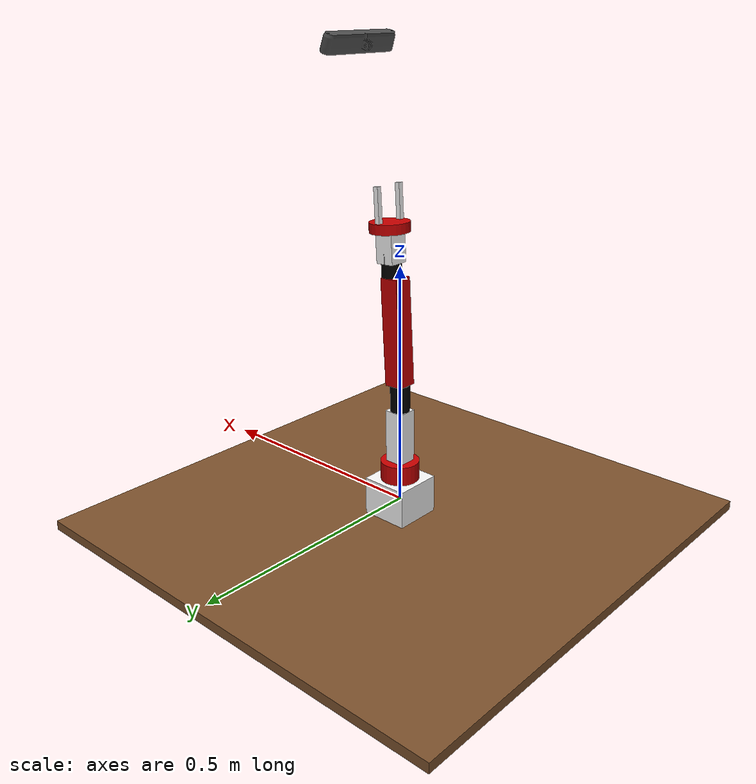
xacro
<?xml version="1.0"?>

<robot name="seven_dof_arm" xmlns:xacro="http://ros.org/wiki/xacro">

	 <!-- Include materials -->
	 <xacro:include filename="$(find mastering_ros_robot_description_pkg)/urdf/sensors/xtion_pro_live.urdf.xacro"/>
    <material name="Black">
        <color rgba="0.0 0.0 0.0 1.0"/>
    </material>

    <material name="Red">
        <color rgba="0.8 0.0 0.0 1.0"/>
    </material>

    <material name="White">
        <color rgba="1.0 1.0 1.0 1.0"/>
    </material>

  <xacro:property name="deg_to_rad" value="0.01745329251994329577"/>

  <!-- Constants -->
  <xacro:property name="M_SCALE" value="0.001 0.001 0.001"/>
  <xacro:property name="M_PI" value="3.14159"/>

  <!-- Shoulder pan link properties -->
  <xacro:property name="shoulder_pan_width" value="0.04" />
  <xacro:property name="shoulder_pan_len" value="0.08" />

  <!-- Shoulder pitch link properties -->
  <xacro:property name="shoulder_pitch_len" value="0.14" />
  <xacro:property name="shoulder_pitch_width" value="0.04" />
  <xacro:property name="shoulder_pitch_height" value="0.04" />

  <!-- Elbow roll link properties -->
  <xacro:property name="elbow_roll_width" value="0.02" />
  <xacro:property name="elbow_roll_len" value="0.06" />

  <!-- Elbow pitch link properties -->
  <xacro:property name="elbow_pitch_len" value="0.22" />
  <xacro:property name="elbow_pitch_width" value="0.04" />
  <xacro:property name="elbow_pitch_height" value="0.04" />

  <!-- Wrist roll link properties -->
  <xacro:property name="wrist_roll_width" value="0.02" />
  <xacro:property name="wrist_roll_len" value="0.04" />

  <!-- wrist pitch link properties -->
  <xacro:property name="wrist_pitch_len" value="0.06" />
  <xacro:property name="wrist_pitch_width" value="0.04" />
  <xacro:property name="wrist_pitch_height" value="0.04" />

  <!-- Gripper roll link properties -->
  <xacro:property name="gripper_roll_width" value="0.04" />
  <xacro:property name="gripper_roll_len" value="0.02" />

  <!-- Left gripper -->
  <xacro:property name="left_gripper_len" value="0.08" />
  <xacro:property name="left_gripper_width" value="0.01" />
  <xacro:property name="left_gripper_height" value="0.01" />

  <!-- Right gripper -->
  <xacro:property name="right_gripper_len" value="0.08" />
  <xacro:property name="right_gripper_width" value="0.01" />
  <xacro:property name="right_gripper_height" value="0.01" />

  <!-- Right gripper -->
  <xacro:property name="grasp_frame_len" value="0.02" />
  <xacro:property name="grasp_frame_width" value="0.02" />
  <xacro:property name="grasp_frame_height" value="0.02" />

   <xacro:macro name="inertial_matrix" params="mass">
      <inertial>
      	<mass value="${mass}" />
        <inertia ixx="1.0" ixy="0.0" ixz="0.0" iyy="0.5" iyz="0.0" izz="1.0" />
      </inertial>
   </xacro:macro>

   <xacro:macro name="transmission_block" params="joint_name">
	  <transmission name="tran1">
	    <type>transmission_interface/SimpleTransmission</type>
	    <joint name="${joint_name}">
	      <hardwareInterface>hardware_interface/PositionJointInterface</hardwareInterface>
	    </joint>
	    <actuator name="motor1">
	      <hardwareInterface>hardware_interface/PositionJointInterface</hardwareInterface>
	      <mechanicalReduction>1</mechanicalReduction>
	    </actuator>
	  </transmission>
   </xacro:macro>

<!-- BOTTOM FIXED LINK
This link is the base of the arm in which arm is placed

-->

  <joint name="bottom_joint" type="fixed">
    <origin xyz="0 0 0" rpy="0 0 0" />
    <parent link="base_link"/>
    <child link="bottom_link"/>
  </joint>

  <link name="bottom_link">

    <visual>
      <origin xyz=" 0 0 -0.04"  rpy="0 0 0"/>
      <geometry>

	       <box size="1 1 0.02" />

      </geometry>
      <material name="Brown" />
    </visual>

    <collision>
      <origin xyz=" 0 0 -0.04"  rpy="0 0 0"/>
      <geometry>
	       <box size="1 1 0.02" />
      </geometry>
      </collision>>

  </link>

  <gazebo reference="bottom_link">
    <material>Gazebo/White</material>
  </gazebo>

  <!-- BASE LINK -->
  <link name="base_link">

    <visual>
      <origin xyz="0 0 0" rpy="${M_PI/2} 0 0" /> <!-- rotate PI/2 -->
      <geometry>

	       <box size="0.1 0.1 0.1" />

      </geometry>
      <material name="White" />
    </visual>

    <collision>
      <origin xyz="0 0 0" rpy="${M_PI/2} 0 0" /> <!-- rotate PI/2 -->
      <geometry>

	       <box size="0.1 0.1 0.1" />

      </geometry>
      </collision>>
	<xacro:inertial_matrix mass="1"/>

  </link>

  <gazebo reference="base_link">
    <material>Gazebo/White</material>
  </gazebo>

  <joint name="shoulder_pan_joint" type="revolute">
    <parent link="base_link"/>
    <child link="shoulder_pan_link"/>
    <origin xyz="0 0 0.05" rpy="0 ${M_PI/2} ${M_PI*0}" />
    <axis xyz="-1 0 0" />
    <limit effort="300" velocity="1" lower="-2.61799387799" upper="1.98394848567"/>
    <dynamics damping="50" friction="1"/>
  </joint>

  <!-- SHOULDER PAN LINK -->
  <link name="shoulder_pan_link" >

    <visual>
      <origin xyz="0 0 0" rpy="0 ${M_PI/2} 0" />
      <geometry>

            <cylinder radius="${shoulder_pan_width}" length="${shoulder_pan_len}"/>

      </geometry>
      <material name="Red" />
    </visual>

    <collision>
      <origin xyz="0 0 0" rpy="0 ${M_PI/2} 0" />
      <geometry>
            <cylinder radius="${shoulder_pan_width}" length="${shoulder_pan_len}"/>
      </geometry>
    </collision>
	<xacro:inertial_matrix mass="1"/>
  </link>

  <gazebo reference="shoulder_pan_link">
    <material>Gazebo/Red</material>
  </gazebo>

  <joint name="shoulder_pitch_joint" type="revolute">
    <parent link="shoulder_pan_link"/>
    <child link="shoulder_pitch_link"/>
    <origin xyz="-0.041 0.0021 0.0" rpy="-${M_PI/2} 0 ${M_PI/2}" />
    <axis xyz="1 0 0" />
    <limit effort="300" velocity="1" lower="-1.19962513147" upper="1.89994105047" />
    <dynamics damping="50" friction="1"/>
  </joint>

  <!-- SHOULDER PITCH LINK -->
  <link name="shoulder_pitch_link" >

    <visual>
      <origin xyz="-0.002 0 0.04" rpy="0 ${M_PI/2} 0" />
      <geometry>
           <box size="${shoulder_pitch_len} ${shoulder_pitch_width} ${shoulder_pitch_height}" />
      </geometry>
      <material name="White" />
    </visual>

    <collision>
      <origin xyz="-0.002 0 0.04" rpy="0 ${M_PI/2} 0" />
      <geometry>
           <box size="${shoulder_pitch_len} ${shoulder_pitch_width} ${shoulder_pitch_height}" />
      </geometry>
    </collision>
	<xacro:inertial_matrix mass="1"/>
  </link>

  <gazebo reference="shoulder_pitch_link">
    <material>Gazebo/White</material>
  </gazebo>

  <joint name="elbow_roll_joint" type="revolute">
    <parent link="shoulder_pitch_link"/>
    <child link="elbow_roll_link"/>
    <origin xyz="-0.002 0 0.1206" rpy="${M_PI} ${M_PI/2} 0" />
    <axis xyz="-1 0 0" />
    <limit effort="300" velocity="1" lower="-2.61799387799" upper="0.705631162427" />
    <dynamics damping="50" friction="1"/>
  </joint>

  <!-- ELBOW ROLL LINK -->
  <link name="elbow_roll_link" >

    <visual>
      <origin xyz="-0.015 0.0 -0.0" rpy="0 ${M_PI/2} 0" />
      <geometry>

            <cylinder radius="${elbow_roll_width}" length="${elbow_roll_len}"/>

      </geometry>
      <material name="Black" />
    </visual>

    <collision>
      <origin xyz="-0.015 0.0 -0.0" rpy="0 ${M_PI/2} 0" />
      <geometry>
            <cylinder radius="${elbow_roll_width}" length="${elbow_roll_len}"/>
      </geometry>
    </collision>
	<xacro:inertial_matrix mass="1"/>
  </link>

  <gazebo reference="elbow_roll_link">
    <material>Gazebo/Black</material>
  </gazebo>

  <joint name="elbow_pitch_joint" type="revolute">
    <parent link="elbow_roll_link"/>
    <child link="elbow_pitch_link"/>
    <origin xyz="-0.035 0 0.0" rpy="0.055 ${M_PI/2} 0" />
    <axis xyz="1 0 0" />
    <limit effort="300" velocity="1" lower="-1.5953400194" upper="1.93281579274" />
    <dynamics damping="50" friction="1"/>
  </joint>

  <!-- ELBOW PITCH LINK -->
  <link name="elbow_pitch_link" >
    <visual>
      <origin xyz="0 0 -0.12" rpy="0 ${M_PI/2} 0" />
      <geometry>
       <box size="${elbow_pitch_len} ${elbow_pitch_width} ${elbow_pitch_height}" />
      </geometry>
      <material name="Red" />
    </visual>

    <collision>
      <origin xyz="0 0 -0.12" rpy="0 ${M_PI/2} 0" />
      <geometry>
       <box size="${elbow_pitch_len} ${elbow_pitch_width} ${elbow_pitch_height}" />
      </geometry>
    </collision>
	<xacro:inertial_matrix mass="1"/>
  </link>

  <gazebo reference="elbow_pitch_link">
    <material>Gazebo/Red</material>
  </gazebo>

  <joint name="wrist_roll_joint" type="revolute">
    <parent link="elbow_pitch_link"/>
    <child link="wrist_roll_link"/>
    <origin xyz="0.0 0.0081 -.248" rpy="0 ${M_PI/2} ${M_PI}" />
    <axis xyz="1 0 0" />
    <limit effort="300" velocity="1" lower="-2.61799387799" upper="2.6128806087" />
    <dynamics damping="50" friction="1"/>
  </joint>

  <!-- WRIST ROLL LINK -->
  <link name="wrist_roll_link" >
    <visual>
      <origin xyz="0 0 0" rpy="0 ${M_PI/2} 0" />
      <geometry>

           <cylinder radius="${elbow_roll_width}" length="${elbow_roll_len}"/>

      </geometry>
      <material name="Black" />
    </visual>

    <collision>
      <origin xyz="0 0 0" rpy="0 ${M_PI/2} 0" />
      <geometry>
           <cylinder radius="${elbow_roll_width}" length="${elbow_roll_len}"/>
      </geometry>
    </collision>
	<xacro:inertial_matrix mass="1"/>

  </link>

  <gazebo reference="wrist_roll_link">
    <material>Gazebo/Black</material>
  </gazebo>

  <joint name="wrist_pitch_joint" type="revolute">
    <parent link="wrist_roll_link"/>
    <child link="wrist_pitch_link"/>
    <origin xyz="0.0 0.0 0.0001" rpy="0 ${M_PI/2} 0" />
    <axis xyz="1 0 0" />
    <limit effort="300" velocity="1" lower="-1.5953400194" upper="1.98394848567" />
    <dynamics damping="50" friction="1"/>
  </joint>

  <!-- WRIST PITCH LINK -->
  <link name="wrist_pitch_link">

    <visual>
      <origin xyz="0 0 0.04" rpy="0 ${M_PI/2} 0" />
      <geometry>

           <box size="${wrist_pitch_len} ${wrist_pitch_width} ${wrist_pitch_height}" />

      </geometry>
      <material name="White" />
    </visual>

    <collision>
      <origin xyz="0 0 0.04 " rpy="0 ${M_PI/2} 0" />
      <geometry>
          <box size="${wrist_pitch_len} ${wrist_pitch_width} ${wrist_pitch_height}" />
      </geometry>
    </collision>
	<xacro:inertial_matrix mass="1"/>

  </link>

  <gazebo reference="wrist_pitch_link">
    <material>Gazebo/White</material>
  </gazebo>

  <joint name="gripper_roll_joint" type="revolute">
    <parent link="wrist_pitch_link"/>
    <child link="gripper_roll_link"/>
    <origin xyz="0 0 0.080" rpy="${1.5*M_PI} -${.5*M_PI} 0" />
    <axis xyz="1 0 0" />
    <limit effort="300" velocity="1" lower="-2.61799387799" upper="2.6128806087" />
    <dynamics damping="50" friction="1"/>
  </joint>

  <!-- GRIPPER ROLL LINK -->
  <link name="gripper_roll_link">

    <visual>
      <origin xyz="0 0 0" rpy="0 ${M_PI/2} 0" />
      <geometry>

            <cylinder radius="${gripper_roll_width}" length="${gripper_roll_len}"/>

      </geometry>
      <material name="Red" />
    </visual>

    <collision>
      <origin xyz="0 0 0" rpy="0 ${M_PI/2} 0" />
      <geometry>
            <cylinder radius="${gripper_roll_width}" length="${gripper_roll_len}"/>
      </geometry>
    </collision>
	<xacro:inertial_matrix mass="1"/>

  </link>

  <gazebo reference="gripper_roll_link">
    <material>Gazebo/Red</material>
  </gazebo>

  <joint name="finger_joint1" type="prismatic">
    <parent link="gripper_roll_link"/>
    <child link="gripper_finger_link1"/>
    <origin xyz="0.0 0 0" />
    <axis xyz="0 1 0" />
      <limit effort="100" lower="0" upper="0.03" velocity="1.0"/>

      <safety_controller k_position="20"
                         k_velocity="20"
                         soft_lower_limit="${-0.15 }"
                         soft_upper_limit="${ 0.0 }"/>

    <dynamics damping="50" friction="1"/>
  </joint>

  <!-- LEFT GRIPPER AFT LINK -->
  <link name="gripper_finger_link1">

     <visual>
      <origin xyz="0.04 -0.03 0"/>
      <geometry>

           <box size="${left_gripper_len} ${left_gripper_width} ${left_gripper_height}" />

      </geometry>
      <material name="White" />
    </visual>
	<xacro:inertial_matrix mass="1"/>
  </link>

  <gazebo reference="l_gripper_aft_link">
    <material>Gazebo/White</material>
  </gazebo>

<!-- Joint between Wrist roll and finger 2 -->

  <joint name="finger_joint2" type="prismatic">
    <parent link="gripper_roll_link"/>
    <child link="gripper_finger_link2"/>
    <origin xyz="0.0 0 0" />
    <axis xyz="0 1 0" />
    <limit effort="1" lower="-0.03" upper="0" velocity="1.0"/>

    <dynamics damping="50" friction="1"/>
  </joint>

  <!-- RIGHT GRIPPER AFT LINK -->
  <link name="gripper_finger_link2">
    <visual>
      <origin xyz="0.04 0.03 0"/>
      <geometry>
          <box size="${right_gripper_len} ${right_gripper_width} ${right_gripper_height}" />
      </geometry>
      <material name="White" />
    </visual>
	<xacro:inertial_matrix mass="1"/>
  </link>

  <gazebo reference="r_gripper_aft_link">
    <material>Gazebo/White</material>
  </gazebo>

  <!-- Define RGB-D sensor -->
  <xacro:xtion_pro_live name="rgbd_camera" parent="base">
    <origin xyz="0.1 0.0 0.9" rpy="${0.0 * deg_to_rad} ${70.0 * deg_to_rad} ${0.0 * deg_to_rad}"/>
    <origin xyz="0 0 0" rpy="${-90 * deg_to_rad} ${0 * deg_to_rad} ${-90 * deg_to_rad}" />
  </xacro:xtion_pro_live>

	<!-- Transmissions for ROS Control -->
	<xacro:transmission_block joint_name="shoulder_pan_joint"/>
	<xacro:transmission_block joint_name="shoulder_pitch_joint"/>
	<xacro:transmission_block joint_name="elbow_roll_joint"/>
	<xacro:transmission_block joint_name="elbow_pitch_joint"/>
	<xacro:transmission_block joint_name="wrist_roll_joint"/>
	<xacro:transmission_block joint_name="wrist_pitch_joint"/>
	<xacro:transmission_block joint_name="gripper_roll_joint"/>
	<xacro:transmission_block joint_name="finger_joint1"/>
	<xacro:transmission_block joint_name="finger_joint2"/>

  <!-- ros_control plugin -->
  <gazebo>
    <plugin name="gazebo_ros_control" filename="libgazebo_ros_control.so">
      <robotNamespace>/seven_dof_arm</robotNamespace>
    </plugin>
  </gazebo>

</robot>

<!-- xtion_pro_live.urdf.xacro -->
<robot xmlns:xacro="http://ros.org/wiki/xacro">

  <xacro:include filename="$(find mastering_ros_robot_description_pkg)/urdf/sensors/xtion_pro_live.gazebo.xacro"/>

  <xacro:macro name="dummy_inertial">
    <inertial>
      <origin xyz="0 0 0" rpy="0 0 0"/>
      <mass value="0.001"/>
      <inertia ixx="0.00001" ixy="0" ixz="0"
               iyy="0.00001" iyz="0"
               izz="0.00001"/>
    </inertial>
  </xacro:macro>

  <xacro:macro name="xtion_pro_live" params="name parent *origin *optical_origin">

    <!-- frames in the center of the camera -->
    <joint name="${name}_joint" type="fixed">
      <xacro:insert_block name="origin"/>
      <parent link="${parent}_link"/>
      <child link="${name}_link"/>
    </joint>

    <link name="${name}_link">
      <inertial>
        <origin xyz="-0.00936000000 -0.00003000000 -0.00273000000" rpy="0 0 0"/>
        <mass value="0.21970000000"/>
        <inertia ixx="0.00000429247" ixy="0.00000000000" ixz="0.00000002565"
                 iyy="0.00000008027" iyz="0.00000000000"
                 izz="0.00000427339"/>
      </inertial>
      <visual>
         <geometry>
					<mesh filename="package://mastering_ros_robot_description_pkg/meshes/sensors/xtion_pro_live/xtion_pro_live.stl"/>
        </geometry>
        <material name="DarkGrey"/>
      </visual>

      <collision>
      <geometry>
          <mesh filename="package://mastering_ros_robot_description_pkg/meshes/sensors/xtion_pro_live/xtion_pro_live.dae"/>
      </geometry>
      </collision>
    </link>

    <joint name="${name}_optical_joint" type="fixed">
      <xacro:insert_block name="optical_origin"/>
      <parent link="${name}_link"/>
      <child link="${name}_optical_frame"/>
    </joint>

    <link name="${name}_optical_frame">
      <dummy_inertial/>
    </link>

    <!-- Depth sensor frames -->
    <joint name="${name}_depth_joint" type="fixed">
      <origin xyz="0.0 0.049 0.0" rpy="0 0 0"/>
      <parent link="${name}_link"/>
      <child link="${name}_depth_frame"/>
    </joint>

    <link name="${name}_depth_frame">
      <dummy_inertial/>
    </link>

    <joint name="${name}_depth_optical_joint" type="fixed">
      <origin xyz="0 0 0" rpy="${-90.0 * deg_to_rad} 0.0 ${-90.0 * deg_to_rad}"/>
      <parent link="${name}_depth_frame"/>
      <child link="${name}_depth_optical_frame"/>
    </joint>

    <link name="${name}_depth_optical_frame">
      <dummy_inertial/>
    </link>

    <!-- RGB sensor frames -->
    <joint name="${name}_rgb_joint" type="fixed">
      <origin xyz="0.0 0.022 0.0" rpy="0 0 0"/>
      <parent link="${name}_link"/>
      <child link="${name}_rgb_frame"/>
    </joint>

    <link name="${name}_rgb_frame">
      <dummy_inertial/>
    </link>

    <joint name="${name}_rgb_optical_joint" type="fixed">
      <origin xyz="0 0 0" rpy="${-90.0 * deg_to_rad} 0.0 ${-90.0 * deg_to_rad}"/>
      <parent link="${name}_rgb_frame"/>
      <child link="${name}_rgb_optical_frame"/>
    </joint>

    <link name="${name}_rgb_optical_frame">
      <dummy_inertial/>
    </link>

    <xacro:xtion_pro_live_rgbd_camera_gazebo name="${name}"/>
  </xacro:macro>

</robot>
